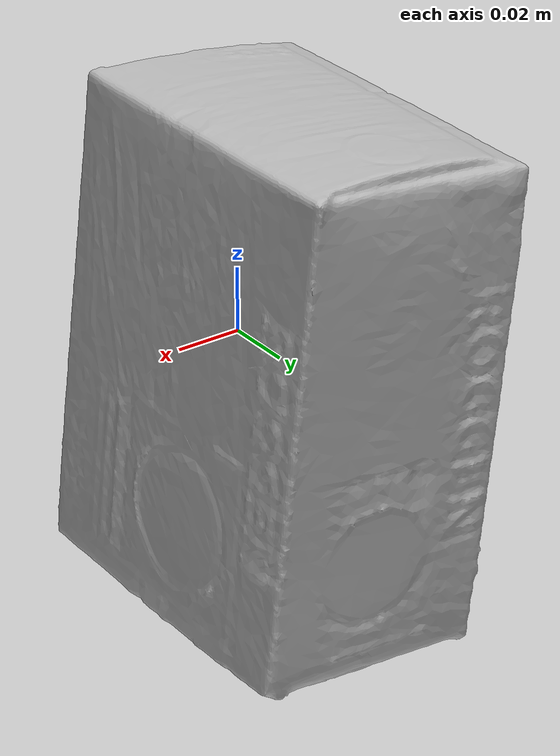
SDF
<?xml version='1.0'?>
<sdf version="1.4">
  <model name="KnaeckebrotRye">
    <static>false</static>
    <link name="link">
      <inertial>
        <pose>-0.0004965505055887442 0.01959477203534294 -0.0007544938734653667 -0.0021491803619725753 0.118396049380745 -3.1377745372829984</pose>
        <mass>0.11776343441885187</mass>
        <inertia>
          <ixx>0.00032902282888675155</ixx>
          <ixy>-8.476552904550372e-21</ixy>
          <ixz>-2.3927567302910117e-20</ixz>
          <iyy>0.0002658375493482705</iyy>
          <iyz>-6.515895931433944e-20</iyz>
          <izz>0.00016607101691107497</izz>
        </inertia>
      </inertial>
      <collision name="collision">
        <geometry>
          <mesh>
            <!-- Use a downsampled mesh for collisions -->
            <uri>model:///KnaeckebrotRye/KnaeckebrotRye_250_collision.obj</uri>
	        </mesh>
        </geometry>
        <surface>
      </surface>
      </collision>
      <visual name="visual">
        <geometry>
          <mesh>
            <uri>model:///KnaeckebrotRye/KnaeckebrotRye_25k_tex.obj</uri>
	        </mesh>
        </geometry>
        <material>
          <script>
            <uri>model:///KnaeckebrotRye/KnaeckebrotRye.material</uri>
            <name>KnaeckebrotRye</name>
          </script>
        </material>
      </visual>
    </link>
  </model>
</sdf>
